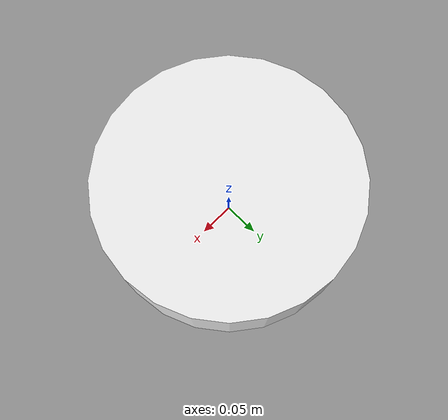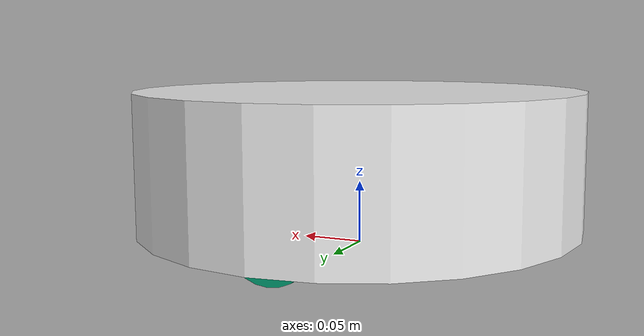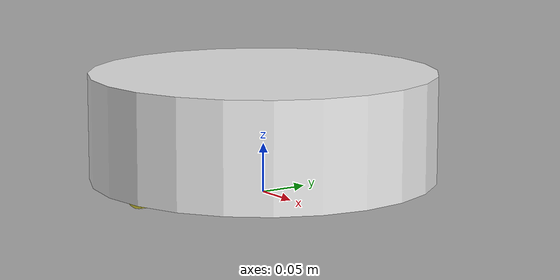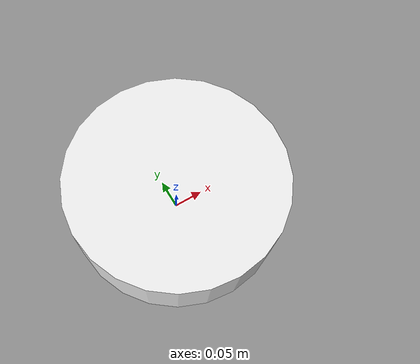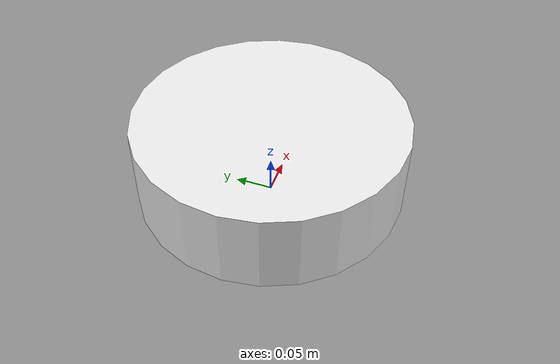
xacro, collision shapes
<?xml version="1.0"?>

<robot name="rosguard" xmlns:xacro="http://ros.org/wiki/xacro">

  <xacro:include filename="$(find rosguard_description)/urdf/common_properties.xacro" />
  <xacro:include filename="$(find rosguard_description)/gazebo/rosguard.gazebo.xacro" />

  <!-- Defining the fixed base link of the robot -->
  <link name="base_footprint"/>

    <joint name="base_joint" type="fixed">
      <origin xyz="0 0 0.0102" rpy="0 0 0" />
      <parent link="base_footprint"/>
      <child link="base_link" />
    </joint>

    <link name="base_link">
      <visual>
        <geometry>
          <!-- new mesh -->
          <mesh filename="package://rosguard_description/meshes/base_plate.dae" />
         <material name="white"/>
        </geometry>

      	<origin xyz="0.001 0 -0.034" rpy="0 0 ${M_PI/2}"/>
      </visual>

      <collision>
        <geometry>
          <cylinder length="0.10938" radius="0.178"/>
        </geometry>
        <origin xyz="0.0 0 0.05949" rpy="0 0 0"/>
      </collision>

      <inertial>
        <!-- COM experimentally determined -->
        <origin xyz="0.01 0 0"/>
        <mass value="2.4"/> <!-- 2.4/2.6 kg for small/big battery pack -->

        <inertia ixx="0.019995" ixy="0.0" ixz="0.0"
                 iyy="0.019995" iyz="0.0"
                 izz="0.03675" />
      </inertial>
    </link>

    <joint name="wheel_left_joint" type="continuous">
      <parent link="base_link"/>
      <child link="rosguard_wheel_left_link"/>
      <origin xyz="0 ${0.28/2} 0.026" rpy="${-M_PI/2} 0 0"/>
      <axis xyz="0 0 1"/>
    </joint>

    <link name="rosguard_wheel_left_link">
      <visual>
        <geometry>
          <mesh filename="package://rosguard_description/meshes/wheel.dae"/>
       <material name="black"/>
        </geometry>
        <origin xyz="0 0 0" rpy="0 0 0"/>
      </visual>
      <collision>
        <geometry>
          <cylinder length="0.0206" radius="0.0352"/>
        </geometry>
        <origin rpy="0 0 0" xyz="0 0 0"/>
      </collision>
      <inertial>
        <mass value="0.01" />
        <origin xyz="0 0 0" />
        <inertia ixx="0.001" ixy="0.0" ixz="0.0"
                 iyy="0.001" iyz="0.0"
                 izz="0.001" />
      </inertial>
    </link>

    <joint name="wheel_right_joint" type="continuous">
      <parent link="base_link"/>
      <child link="rosguard_wheel_right_link"/>
      <origin xyz="0.00 -${0.28/2} 0.026" rpy="${-M_PI/2} 0 0"/>
      <axis xyz="0 0 1"/>
    </joint>

    <link name="rosguard_wheel_right_link">
      <visual>
        <geometry>
          <mesh filename="package://rosguard_description/meshes/wheel.dae"/>
       	<material name="white"/>
        </geometry>
        <origin xyz="0 0 0" rpy="0 0 0"/>
      </visual>
      <collision>
        <geometry>
          <cylinder length="0.0206" radius="0.0350"/>
        </geometry>
        <origin rpy="0 0 0" xyz="0 0 0"/>
      </collision>
      <inertial>
        <mass value="0.01" />
        <origin xyz="0 0 0" />
        <inertia ixx="0.001" ixy="0.0" ixz="0.0"
                 iyy="0.001" iyz="0.0"
                 izz="0.001" />
      </inertial>
    </link>

    <joint name="rosguard_caster_back_joint" type="fixed">
      <parent link="base_link"/>
      <child link="rosguard_caster_back_link"/>
      <origin xyz="-0.135 0.0 0.009" rpy="${-M_PI/2} 0 0"/>
    </joint>

    <link name="rosguard_caster_back_link">
      <collision>
        <geometry>
          <cylinder length="0.0176" radius="0.017"/>
        </geometry>
        <origin rpy="0 0 0" xyz="0 0 0"/>
      </collision>
      <inertial>
        <mass value="0.01" />
        <origin xyz="0 0 0" />
        <inertia ixx="0.001" ixy="0.0" ixz="0.0"
                 iyy="0.001" iyz="0.0"
                 izz="0.001" />
      </inertial>
    </link>

    <!-- rosguard's sensors -->
</robot>

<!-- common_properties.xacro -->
<!--
  Various useful properties such as constants and materials
 -->
<robot name="rosguard" xmlns:xacro="http://ros.org/wiki/xacro">
  <xacro:property name="M_PI" value="3.1415926535897931" />

  <xacro:property name="material_white">

    <material name="white">
      <color rgba="1 1 1 1"/>
    </material>
  </xacro:property>
  <xacro:property name="material_grey">
    <material name="grey">
      <color rgba="0.5 0.5 0.5 1"/>
    </material>
  </xacro:property>
  <xacro:property name="material_light_grey">
    <material name="light_grey">
      <color rgba="0.6 0.6 0.6 1"/>
    </material>
  </xacro:property>
  <xacro:property name="material_dark_grey">
    <material name="dark_grey">
      <color rgba="0.3 0.3 0.3 1"/>
    </material>
  </xacro:property>
  <xacro:property name="material_black">
    <material name="black">
      <color rgba="0.1 0.1 0.1 1"/>
    </material>
  </xacro:property>
  <xacro:property name="material_red">
    <material name="red">
      <color rgba="1 0 0 1"/>
    </material>
  </xacro:property>
  <xacro:property name="material_green">
    <material name="green">
      <color rgba="0.0 0.8 0.0 1"/>
    </material>
  </xacro:property>
  <xacro:property name="material_blue">
    <material name="blue">
      <color rgba="0.0 0.0 1.0 1"/>
    </material>
  </xacro:property>
  <xacro:property name="material_grey_blue">
    <material name="grey_blue">
      <color rgba="0.4 0.4 1.0 1"/>
    </material>
  </xacro:property>
  <xacro:property name="material_orange">
    <material name="orange">
      <color rgba="1.0 0.7 0.0 1"/>
    </material>
  </xacro:property>
</robot>

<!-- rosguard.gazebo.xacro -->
<robot name="rosguard" xmlns:xacro="http://ros.org/wiki/xacro">

	<material name="blue">
	    <color rgba="0 0 0.8 1"/>
	</material>

	<material name="white">
	    <color rgba="1 1 1 1"/>
	</material>

	<material name="yellow">
	    <color rgba="1 0.8 0.3 0.7"/>
	</material>

	<material name="gray">
	    <color rgba="0.7 0.7 0.7 1.0"/>
	</material>

	<material name="darkgray">
	   <color rgba="0.3 0.3 0.3 1.0"/>
	</material>

  <gazebo reference="chefbot_wheel_left_link">
    <mu1>1.0</mu1>
    <mu2>1.0</mu2>
    <kp>1000000.0</kp>
    <kd>100.0</kd>
    <minDepth>0.001</minDepth>
    <maxVel>1.0</maxVel>
  </gazebo>

  <gazebo reference="chefbot_wheel_right_link">
    <mu1>1.0</mu1>
    <mu2>1.0</mu2>
    <kp>1000000.0</kp>
    <kd>100.0</kd>
    <minDepth>0.001</minDepth>
    <maxVel>1.0</maxVel>
  </gazebo>

  <gazebo reference="chefbot_caster_back_link">
    <mu1>0.0</mu1>
    <mu2>0.0</mu2>
    <kp>1000000.0</kp>
    <kd>100.0</kd>
    <minDepth>0.001</minDepth>
    <maxVel>1.0</maxVel>
  </gazebo>

  <gazebo reference="base_link">
    <mu1>0.3</mu1>
    <mu2>0.3</mu2>
    <sensor type="contact" name="bumpers">
      <always_on>1</always_on>
      <update_rate>50.0</update_rate>
      <visualize>true</visualize>
      <contact>
        <collision>base_footprint_collision_base_link</collision>
      </contact>
    </sensor>
  </gazebo>

	<gazebo reference="chefbot_wheel_left_link">
	  <material>Gazebo/Black</material>
	</gazebo>

	<gazebo reference="chefbot_wheel_right_link">
	  <material>Gazebo/Black</material>
	</gazebo>

	<gazebo reference="base_link">
	  <material>Gazebo/White</material>
	</gazebo>

  <gazebo reference="base_link">
    <mu1>0.3</mu1>
    <mu2>0.3</mu2>
    <sensor type="contact" name="bumpers">
      <always_on>1</always_on>
      <update_rate>50.0</update_rate>
      <visualize>true</visualize>
      <contact>
        <collision>base_footprint_collision_base_link</collision>
      </contact>
    </sensor>
  </gazebo>

  <gazebo>
    <plugin name="kobuki_controller" filename="libgazebo_ros_kobuki.so">
      <publish_tf>1</publish_tf>
      <left_wheel_joint_name>wheel_left_joint</left_wheel_joint_name>
      <right_wheel_joint_name>wheel_right_joint</right_wheel_joint_name>
      <wheel_separation>.182</wheel_separation>
      <wheel_diameter>0.06</wheel_diameter>
      <torque>18.0</torque>
      <velocity_command_timeout>0.6</velocity_command_timeout>
    </plugin>
  </gazebo>
</robot>
